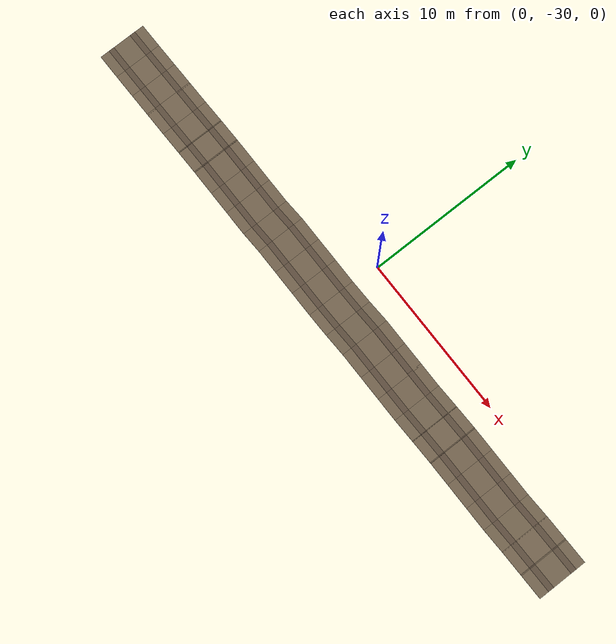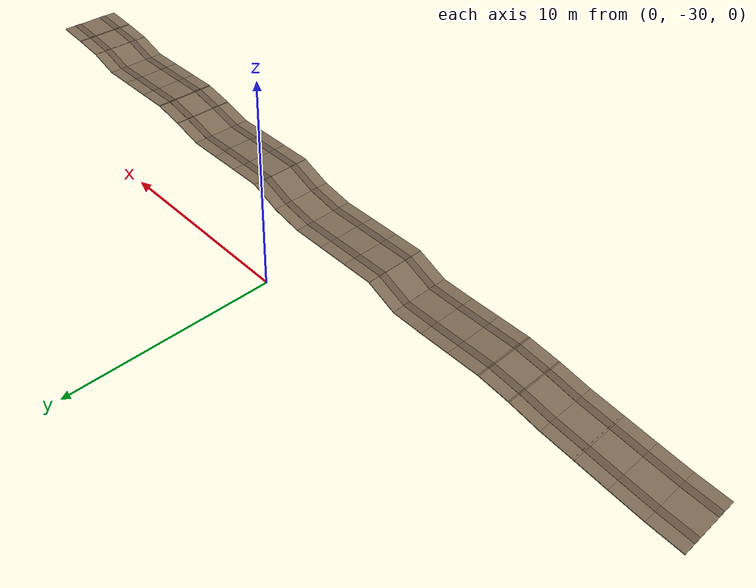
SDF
<sdf version="1.9">
 <world name="orchard_10x41">
  <model name="access_road">
   <static>true</static>
   <link name="link">
    <visual name="road_1">
     <pose>-18.510 -33.300 0.227 0.0000 -0.0709 0.0000</pose>
     <geometry><box><size>1.5696 3.0000 0.0400</size></box></geometry>
     <material>
      <ambient>0.440 0.380 0.300 1</ambient>
      <diffuse>0.484 0.418 0.330 1</diffuse>
      <specular>0.132 0.114 0.090 1</specular>
     </material>
     <plugin filename="gz-sim-label-system" name="gz::sim::systems::Label"><label>65</label></plugin>
    </visual>
    <visual name="rut_2">
     <pose>-18.510 -34.050 0.249 0.0000 -0.0709 0.0000</pose>
     <geometry><box><size>1.5696 0.3500 0.0120</size></box></geometry>
     <material>
      <ambient>0.360 0.300 0.240 1</ambient>
      <diffuse>0.396 0.330 0.264 1</diffuse>
      <specular>0.108 0.090 0.072 1</specular>
     </material>
     <plugin filename="gz-sim-label-system" name="gz::sim::systems::Label"><label>65</label></plugin>
    </visual>
    <visual name="rut_3">
     <pose>-18.510 -32.550 0.249 0.0000 -0.0709 0.0000</pose>
     <geometry><box><size>1.5696 0.3500 0.0120</size></box></geometry>
     <material>
      <ambient>0.360 0.300 0.240 1</ambient>
      <diffuse>0.396 0.330 0.264 1</diffuse>
      <specular>0.108 0.090 0.072 1</specular>
     </material>
     <plugin filename="gz-sim-label-system" name="gz::sim::systems::Label"><label>65</label></plugin>
    </visual>
    <visual name="road_4">
     <pose>-17.029 -33.300 0.366 0.0000 -0.1166 0.0000</pose>
     <geometry><box><size>1.5696 3.0000 0.0400</size></box></geometry>
     <material>
      <ambient>0.440 0.380 0.300 1</ambient>
      <diffuse>0.484 0.418 0.330 1</diffuse>
      <specular>0.132 0.114 0.090 1</specular>
     </material>
     <plugin filename="gz-sim-label-system" name="gz::sim::systems::Label"><label>65</label></plugin>
    </visual>
    <visual name="rut_5">
     <pose>-17.029 -34.050 0.388 0.0000 -0.1166 0.0000</pose>
     <geometry><box><size>1.5696 0.3500 0.0120</size></box></geometry>
     <material>
      <ambient>0.360 0.300 0.240 1</ambient>
      <diffuse>0.396 0.330 0.264 1</diffuse>
      <specular>0.108 0.090 0.072 1</specular>
     </material>
     <plugin filename="gz-sim-label-system" name="gz::sim::systems::Label"><label>65</label></plugin>
    </visual>
    <visual name="rut_6">
     <pose>-17.029 -32.550 0.388 0.0000 -0.1166 0.0000</pose>
     <geometry><box><size>1.5696 0.3500 0.0120</size></box></geometry>
     <material>
      <ambient>0.360 0.300 0.240 1</ambient>
      <diffuse>0.396 0.330 0.264 1</diffuse>
      <specular>0.108 0.090 0.072 1</specular>
     </material>
     <plugin filename="gz-sim-label-system" name="gz::sim::systems::Label"><label>65</label></plugin>
    </visual>
    <visual name="road_7">
     <pose>-15.548 -33.300 0.547 0.0000 -0.1269 0.0000</pose>
     <geometry><box><size>1.5696 3.0000 0.0400</size></box></geometry>
     <material>
      <ambient>0.440 0.380 0.300 1</ambient>
      <diffuse>0.484 0.418 0.330 1</diffuse>
      <specular>0.132 0.114 0.090 1</specular>
     </material>
     <plugin filename="gz-sim-label-system" name="gz::sim::systems::Label"><label>65</label></plugin>
    </visual>
    <visual name="rut_8">
     <pose>-15.548 -34.050 0.569 0.0000 -0.1269 0.0000</pose>
     <geometry><box><size>1.5696 0.3500 0.0120</size></box></geometry>
     <material>
      <ambient>0.360 0.300 0.240 1</ambient>
      <diffuse>0.396 0.330 0.264 1</diffuse>
      <specular>0.108 0.090 0.072 1</specular>
     </material>
     <plugin filename="gz-sim-label-system" name="gz::sim::systems::Label"><label>65</label></plugin>
    </visual>
    <visual name="rut_9">
     <pose>-15.548 -32.550 0.569 0.0000 -0.1269 0.0000</pose>
     <geometry><box><size>1.5696 0.3500 0.0120</size></box></geometry>
     <material>
      <ambient>0.360 0.300 0.240 1</ambient>
      <diffuse>0.396 0.330 0.264 1</diffuse>
      <specular>0.108 0.090 0.072 1</specular>
     </material>
     <plugin filename="gz-sim-label-system" name="gz::sim::systems::Label"><label>65</label></plugin>
    </visual>
    <visual name="road_10">
     <pose>-14.067 -33.300 0.730 0.0000 -0.1186 0.0000</pose>
     <geometry><box><size>1.5696 3.0000 0.0400</size></box></geometry>
     <material>
      <ambient>0.440 0.380 0.300 1</ambient>
      <diffuse>0.484 0.418 0.330 1</diffuse>
      <specular>0.132 0.114 0.090 1</specular>
     </material>
     <plugin filename="gz-sim-label-system" name="gz::sim::systems::Label"><label>65</label></plugin>
    </visual>
    <visual name="rut_11">
     <pose>-14.067 -34.050 0.752 0.0000 -0.1186 0.0000</pose>
     <geometry><box><size>1.5696 0.3500 0.0120</size></box></geometry>
     <material>
      <ambient>0.360 0.300 0.240 1</ambient>
      <diffuse>0.396 0.330 0.264 1</diffuse>
      <specular>0.108 0.090 0.072 1</specular>
     </material>
     <plugin filename="gz-sim-label-system" name="gz::sim::systems::Label"><label>65</label></plugin>
    </visual>
    <visual name="rut_12">
     <pose>-14.067 -32.550 0.752 0.0000 -0.1186 0.0000</pose>
     <geometry><box><size>1.5696 0.3500 0.0120</size></box></geometry>
     <material>
      <ambient>0.360 0.300 0.240 1</ambient>
      <diffuse>0.396 0.330 0.264 1</diffuse>
      <specular>0.108 0.090 0.072 1</specular>
     </material>
     <plugin filename="gz-sim-label-system" name="gz::sim::systems::Label"><label>65</label></plugin>
    </visual>
    <visual name="road_13">
     <pose>-12.587 -33.300 0.959 0.0000 -0.1885 0.0000</pose>
     <geometry><box><size>1.5696 3.0000 0.0400</size></box></geometry>
     <material>
      <ambient>0.440 0.380 0.300 1</ambient>
      <diffuse>0.484 0.418 0.330 1</diffuse>
      <specular>0.132 0.114 0.090 1</specular>
     </material>
     <plugin filename="gz-sim-label-system" name="gz::sim::systems::Label"><label>65</label></plugin>
    </visual>
    <visual name="rut_14">
     <pose>-12.587 -34.050 0.981 0.0000 -0.1885 0.0000</pose>
     <geometry><box><size>1.5696 0.3500 0.0120</size></box></geometry>
     <material>
      <ambient>0.360 0.300 0.240 1</ambient>
      <diffuse>0.396 0.330 0.264 1</diffuse>
      <specular>0.108 0.090 0.072 1</specular>
     </material>
     <plugin filename="gz-sim-label-system" name="gz::sim::systems::Label"><label>65</label></plugin>
    </visual>
    <visual name="rut_15">
     <pose>-12.587 -32.550 0.981 0.0000 -0.1885 0.0000</pose>
     <geometry><box><size>1.5696 0.3500 0.0120</size></box></geometry>
     <material>
      <ambient>0.360 0.300 0.240 1</ambient>
      <diffuse>0.396 0.330 0.264 1</diffuse>
      <specular>0.108 0.090 0.072 1</specular>
     </material>
     <plugin filename="gz-sim-label-system" name="gz::sim::systems::Label"><label>65</label></plugin>
    </visual>
    <visual name="road_16">
     <pose>-11.106 -33.300 1.196 0.0000 -0.1280 0.0000</pose>
     <geometry><box><size>1.5696 3.0000 0.0400</size></box></geometry>
     <material>
      <ambient>0.440 0.380 0.300 1</ambient>
      <diffuse>0.484 0.418 0.330 1</diffuse>
      <specular>0.132 0.114 0.090 1</specular>
     </material>
     <plugin filename="gz-sim-label-system" name="gz::sim::systems::Label"><label>65</label></plugin>
    </visual>
    <visual name="rut_17">
     <pose>-11.106 -34.050 1.218 0.0000 -0.1280 0.0000</pose>
     <geometry><box><size>1.5696 0.3500 0.0120</size></box></geometry>
     <material>
      <ambient>0.360 0.300 0.240 1</ambient>
      <diffuse>0.396 0.330 0.264 1</diffuse>
      <specular>0.108 0.090 0.072 1</specular>
     </material>
     <plugin filename="gz-sim-label-system" name="gz::sim::systems::Label"><label>65</label></plugin>
    </visual>
    <visual name="rut_18">
     <pose>-11.106 -32.550 1.218 0.0000 -0.1280 0.0000</pose>
     <geometry><box><size>1.5696 0.3500 0.0120</size></box></geometry>
     <material>
      <ambient>0.360 0.300 0.240 1</ambient>
      <diffuse>0.396 0.330 0.264 1</diffuse>
      <specular>0.108 0.090 0.072 1</specular>
     </material>
     <plugin filename="gz-sim-label-system" name="gz::sim::systems::Label"><label>65</label></plugin>
    </visual>
    <visual name="road_19">
     <pose>-9.625 -33.300 1.291 0.0000 0.0002 0.0000</pose>
     <geometry><box><size>1.5696 3.0000 0.0400</size></box></geometry>
     <material>
      <ambient>0.440 0.380 0.300 1</ambient>
      <diffuse>0.484 0.418 0.330 1</diffuse>
      <specular>0.132 0.114 0.090 1</specular>
     </material>
     <plugin filename="gz-sim-label-system" name="gz::sim::systems::Label"><label>65</label></plugin>
    </visual>
    <visual name="rut_20">
     <pose>-9.625 -34.050 1.313 0.0000 0.0002 0.0000</pose>
     <geometry><box><size>1.5696 0.3500 0.0120</size></box></geometry>
     <material>
      <ambient>0.360 0.300 0.240 1</ambient>
      <diffuse>0.396 0.330 0.264 1</diffuse>
      <specular>0.108 0.090 0.072 1</specular>
     </material>
     <plugin filename="gz-sim-label-system" name="gz::sim::systems::Label"><label>65</label></plugin>
    </visual>
    <visual name="rut_21">
     <pose>-9.625 -32.550 1.313 0.0000 0.0002 0.0000</pose>
     <geometry><box><size>1.5696 0.3500 0.0120</size></box></geometry>
     <material>
      <ambient>0.360 0.300 0.240 1</ambient>
      <diffuse>0.396 0.330 0.264 1</diffuse>
      <specular>0.108 0.090 0.072 1</specular>
     </material>
     <plugin filename="gz-sim-label-system" name="gz::sim::systems::Label"><label>65</label></plugin>
    </visual>
    <visual name="road_22">
     <pose>-8.144 -33.300 1.290 0.0000 0.0003 0.0000</pose>
     <geometry><box><size>1.5696 3.0000 0.0400</size></box></geometry>
     <material>
      <ambient>0.440 0.380 0.300 1</ambient>
      <diffuse>0.484 0.418 0.330 1</diffuse>
      <specular>0.132 0.114 0.090 1</specular>
     </material>
     <plugin filename="gz-sim-label-system" name="gz::sim::systems::Label"><label>65</label></plugin>
    </visual>
    <visual name="rut_23">
     <pose>-8.144 -34.050 1.312 0.0000 0.0003 0.0000</pose>
     <geometry><box><size>1.5696 0.3500 0.0120</size></box></geometry>
     <material>
      <ambient>0.360 0.300 0.240 1</ambient>
      <diffuse>0.396 0.330 0.264 1</diffuse>
      <specular>0.108 0.090 0.072 1</specular>
     </material>
     <plugin filename="gz-sim-label-system" name="gz::sim::systems::Label"><label>65</label></plugin>
    </visual>
    <visual name="rut_24">
     <pose>-8.144 -32.550 1.312 0.0000 0.0003 0.0000</pose>
     <geometry><box><size>1.5696 0.3500 0.0120</size></box></geometry>
     <material>
      <ambient>0.360 0.300 0.240 1</ambient>
      <diffuse>0.396 0.330 0.264 1</diffuse>
      <specular>0.108 0.090 0.072 1</specular>
     </material>
     <plugin filename="gz-sim-label-system" name="gz::sim::systems::Label"><label>65</label></plugin>
    </visual>
    <visual name="road_25">
     <pose>-6.663 -33.300 1.305 0.0000 -0.0194 0.0000</pose>
     <geometry><box><size>1.5696 3.0000 0.0400</size></box></geometry>
     <material>
      <ambient>0.440 0.380 0.300 1</ambient>
      <diffuse>0.484 0.418 0.330 1</diffuse>
      <specular>0.132 0.114 0.090 1</specular>
     </material>
     <plugin filename="gz-sim-label-system" name="gz::sim::systems::Label"><label>65</label></plugin>
    </visual>
    <visual name="rut_26">
     <pose>-6.663 -34.050 1.327 0.0000 -0.0194 0.0000</pose>
     <geometry><box><size>1.5696 0.3500 0.0120</size></box></geometry>
     <material>
      <ambient>0.360 0.300 0.240 1</ambient>
      <diffuse>0.396 0.330 0.264 1</diffuse>
      <specular>0.108 0.090 0.072 1</specular>
     </material>
     <plugin filename="gz-sim-label-system" name="gz::sim::systems::Label"><label>65</label></plugin>
    </visual>
    <visual name="rut_27">
     <pose>-6.663 -32.550 1.327 0.0000 -0.0194 0.0000</pose>
     <geometry><box><size>1.5696 0.3500 0.0120</size></box></geometry>
     <material>
      <ambient>0.360 0.300 0.240 1</ambient>
      <diffuse>0.396 0.330 0.264 1</diffuse>
      <specular>0.108 0.090 0.072 1</specular>
     </material>
     <plugin filename="gz-sim-label-system" name="gz::sim::systems::Label"><label>65</label></plugin>
    </visual>
    <visual name="road_28">
     <pose>-5.183 -33.300 1.643 0.0000 -0.4126 0.0000</pose>
     <geometry><box><size>1.5696 3.0000 0.0400</size></box></geometry>
     <material>
      <ambient>0.440 0.380 0.300 1</ambient>
      <diffuse>0.484 0.418 0.330 1</diffuse>
      <specular>0.132 0.114 0.090 1</specular>
     </material>
     <plugin filename="gz-sim-label-system" name="gz::sim::systems::Label"><label>65</label></plugin>
    </visual>
    <visual name="rut_29">
     <pose>-5.183 -34.050 1.665 0.0000 -0.4126 0.0000</pose>
     <geometry><box><size>1.5696 0.3500 0.0120</size></box></geometry>
     <material>
      <ambient>0.360 0.300 0.240 1</ambient>
      <diffuse>0.396 0.330 0.264 1</diffuse>
      <specular>0.108 0.090 0.072 1</specular>
     </material>
     <plugin filename="gz-sim-label-system" name="gz::sim::systems::Label"><label>65</label></plugin>
    </visual>
    <visual name="rut_30">
     <pose>-5.183 -32.550 1.665 0.0000 -0.4126 0.0000</pose>
     <geometry><box><size>1.5696 0.3500 0.0120</size></box></geometry>
     <material>
      <ambient>0.360 0.300 0.240 1</ambient>
      <diffuse>0.396 0.330 0.264 1</diffuse>
      <specular>0.108 0.090 0.072 1</specular>
     </material>
     <plugin filename="gz-sim-label-system" name="gz::sim::systems::Label"><label>65</label></plugin>
    </visual>
    <visual name="road_31">
     <pose>-3.702 -33.300 1.967 0.0000 0.0002 0.0000</pose>
     <geometry><box><size>1.5696 3.0000 0.0400</size></box></geometry>
     <material>
      <ambient>0.440 0.380 0.300 1</ambient>
      <diffuse>0.484 0.418 0.330 1</diffuse>
      <specular>0.132 0.114 0.090 1</specular>
     </material>
     <plugin filename="gz-sim-label-system" name="gz::sim::systems::Label"><label>65</label></plugin>
    </visual>
    <visual name="rut_32">
     <pose>-3.702 -34.050 1.989 0.0000 0.0002 0.0000</pose>
     <geometry><box><size>1.5696 0.3500 0.0120</size></box></geometry>
     <material>
      <ambient>0.360 0.300 0.240 1</ambient>
      <diffuse>0.396 0.330 0.264 1</diffuse>
      <specular>0.108 0.090 0.072 1</specular>
     </material>
     <plugin filename="gz-sim-label-system" name="gz::sim::systems::Label"><label>65</label></plugin>
    </visual>
    <visual name="rut_33">
     <pose>-3.702 -32.550 1.989 0.0000 0.0002 0.0000</pose>
     <geometry><box><size>1.5696 0.3500 0.0120</size></box></geometry>
     <material>
      <ambient>0.360 0.300 0.240 1</ambient>
      <diffuse>0.396 0.330 0.264 1</diffuse>
      <specular>0.108 0.090 0.072 1</specular>
     </material>
     <plugin filename="gz-sim-label-system" name="gz::sim::systems::Label"><label>65</label></plugin>
    </visual>
    <visual name="road_34">
     <pose>-2.221 -33.300 1.967 0.0000 0.0002 0.0000</pose>
     <geometry><box><size>1.5696 3.0000 0.0400</size></box></geometry>
     <material>
      <ambient>0.440 0.380 0.300 1</ambient>
      <diffuse>0.484 0.418 0.330 1</diffuse>
      <specular>0.132 0.114 0.090 1</specular>
     </material>
     <plugin filename="gz-sim-label-system" name="gz::sim::systems::Label"><label>65</label></plugin>
    </visual>
    <visual name="rut_35">
     <pose>-2.221 -34.050 1.989 0.0000 0.0002 0.0000</pose>
     <geometry><box><size>1.5696 0.3500 0.0120</size></box></geometry>
     <material>
      <ambient>0.360 0.300 0.240 1</ambient>
      <diffuse>0.396 0.330 0.264 1</diffuse>
      <specular>0.108 0.090 0.072 1</specular>
     </material>
     <plugin filename="gz-sim-label-system" name="gz::sim::systems::Label"><label>65</label></plugin>
    </visual>
    <visual name="rut_36">
     <pose>-2.221 -32.550 1.989 0.0000 0.0002 0.0000</pose>
     <geometry><box><size>1.5696 0.3500 0.0120</size></box></geometry>
     <material>
      <ambient>0.360 0.300 0.240 1</ambient>
      <diffuse>0.396 0.330 0.264 1</diffuse>
      <specular>0.108 0.090 0.072 1</specular>
     </material>
     <plugin filename="gz-sim-label-system" name="gz::sim::systems::Label"><label>65</label></plugin>
    </visual>
    <visual name="road_37">
     <pose>-0.740 -33.300 1.967 0.0000 0.0001 0.0000</pose>
     <geometry><box><size>1.5696 3.0000 0.0400</size></box></geometry>
     <material>
      <ambient>0.440 0.380 0.300 1</ambient>
      <diffuse>0.484 0.418 0.330 1</diffuse>
      <specular>0.132 0.114 0.090 1</specular>
     </material>
     <plugin filename="gz-sim-label-system" name="gz::sim::systems::Label"><label>65</label></plugin>
    </visual>
    <visual name="rut_38">
     <pose>-0.740 -34.050 1.989 0.0000 0.0001 0.0000</pose>
     <geometry><box><size>1.5696 0.3500 0.0120</size></box></geometry>
     <material>
      <ambient>0.360 0.300 0.240 1</ambient>
      <diffuse>0.396 0.330 0.264 1</diffuse>
      <specular>0.108 0.090 0.072 1</specular>
     </material>
     <plugin filename="gz-sim-label-system" name="gz::sim::systems::Label"><label>65</label></plugin>
    </visual>
    <visual name="rut_39">
     <pose>-0.740 -32.550 1.989 0.0000 0.0001 0.0000</pose>
     <geometry><box><size>1.5696 0.3500 0.0120</size></box></geometry>
     <material>
      <ambient>0.360 0.300 0.240 1</ambient>
      <diffuse>0.396 0.330 0.264 1</diffuse>
      <specular>0.108 0.090 0.072 1</specular>
     </material>
     <plugin filename="gz-sim-label-system" name="gz::sim::systems::Label"><label>65</label></plugin>
    </visual>
    <visual name="road_40">
     <pose>0.740 -33.300 2.108 0.0000 -0.1891 0.0000</pose>
     <geometry><box><size>1.5696 3.0000 0.0400</size></box></geometry>
     <material>
      <ambient>0.440 0.380 0.300 1</ambient>
      <diffuse>0.484 0.418 0.330 1</diffuse>
      <specular>0.132 0.114 0.090 1</specular>
     </material>
     <plugin filename="gz-sim-label-system" name="gz::sim::systems::Label"><label>65</label></plugin>
    </visual>
    <visual name="rut_41">
     <pose>0.740 -34.050 2.130 0.0000 -0.1891 0.0000</pose>
     <geometry><box><size>1.5696 0.3500 0.0120</size></box></geometry>
     <material>
      <ambient>0.360 0.300 0.240 1</ambient>
      <diffuse>0.396 0.330 0.264 1</diffuse>
      <specular>0.108 0.090 0.072 1</specular>
     </material>
     <plugin filename="gz-sim-label-system" name="gz::sim::systems::Label"><label>65</label></plugin>
    </visual>
    <visual name="rut_42">
     <pose>0.740 -32.550 2.130 0.0000 -0.1891 0.0000</pose>
     <geometry><box><size>1.5696 0.3500 0.0120</size></box></geometry>
     <material>
      <ambient>0.360 0.300 0.240 1</ambient>
      <diffuse>0.396 0.330 0.264 1</diffuse>
      <specular>0.108 0.090 0.072 1</specular>
     </material>
     <plugin filename="gz-sim-label-system" name="gz::sim::systems::Label"><label>65</label></plugin>
    </visual>
    <visual name="road_43">
     <pose>2.221 -33.300 2.539 0.0000 -0.3725 0.0000</pose>
     <geometry><box><size>1.5696 3.0000 0.0400</size></box></geometry>
     <material>
      <ambient>0.440 0.380 0.300 1</ambient>
      <diffuse>0.484 0.418 0.330 1</diffuse>
      <specular>0.132 0.114 0.090 1</specular>
     </material>
     <plugin filename="gz-sim-label-system" name="gz::sim::systems::Label"><label>65</label></plugin>
    </visual>
    <visual name="rut_44">
     <pose>2.221 -34.050 2.561 0.0000 -0.3725 0.0000</pose>
     <geometry><box><size>1.5696 0.3500 0.0120</size></box></geometry>
     <material>
      <ambient>0.360 0.300 0.240 1</ambient>
      <diffuse>0.396 0.330 0.264 1</diffuse>
      <specular>0.108 0.090 0.072 1</specular>
     </material>
     <plugin filename="gz-sim-label-system" name="gz::sim::systems::Label"><label>65</label></plugin>
    </visual>
    <visual name="rut_45">
     <pose>2.221 -32.550 2.561 0.0000 -0.3725 0.0000</pose>
     <geometry><box><size>1.5696 0.3500 0.0120</size></box></geometry>
     <material>
      <ambient>0.360 0.300 0.240 1</ambient>
      <diffuse>0.396 0.330 0.264 1</diffuse>
      <specular>0.108 0.090 0.072 1</specular>
     </material>
     <plugin filename="gz-sim-label-system" name="gz::sim::systems::Label"><label>65</label></plugin>
    </visual>
    <visual name="road_46">
     <pose>3.702 -33.300 2.829 0.0000 -0.0002 0.0000</pose>
     <geometry><box><size>1.5696 3.0000 0.0400</size></box></geometry>
     <material>
      <ambient>0.440 0.380 0.300 1</ambient>
      <diffuse>0.484 0.418 0.330 1</diffuse>
      <specular>0.132 0.114 0.090 1</specular>
     </material>
     <plugin filename="gz-sim-label-system" name="gz::sim::systems::Label"><label>65</label></plugin>
    </visual>
    <visual name="rut_47">
     <pose>3.702 -34.050 2.851 0.0000 -0.0002 0.0000</pose>
     <geometry><box><size>1.5696 0.3500 0.0120</size></box></geometry>
     <material>
      <ambient>0.360 0.300 0.240 1</ambient>
      <diffuse>0.396 0.330 0.264 1</diffuse>
      <specular>0.108 0.090 0.072 1</specular>
     </material>
     <plugin filename="gz-sim-label-system" name="gz::sim::systems::Label"><label>65</label></plugin>
    </visual>
    <visual name="rut_48">
     <pose>3.702 -32.550 2.851 0.0000 -0.0002 0.0000</pose>
     <geometry><box><size>1.5696 0.3500 0.0120</size></box></geometry>
     <material>
      <ambient>0.360 0.300 0.240 1</ambient>
      <diffuse>0.396 0.330 0.264 1</diffuse>
      <specular>0.108 0.090 0.072 1</specular>
     </material>
     <plugin filename="gz-sim-label-system" name="gz::sim::systems::Label"><label>65</label></plugin>
    </visual>
    <visual name="road_49">
     <pose>5.183 -33.300 2.829 0.0000 -0.0000 0.0000</pose>
     <geometry><box><size>1.5696 3.0000 0.0400</size></box></geometry>
     <material>
      <ambient>0.440 0.380 0.300 1</ambient>
      <diffuse>0.484 0.418 0.330 1</diffuse>
      <specular>0.132 0.114 0.090 1</specular>
     </material>
     <plugin filename="gz-sim-label-system" name="gz::sim::systems::Label"><label>65</label></plugin>
    </visual>
    <visual name="rut_50">
     <pose>5.183 -34.050 2.851 0.0000 -0.0000 0.0000</pose>
     <geometry><box><size>1.5696 0.3500 0.0120</size></box></geometry>
     <material>
      <ambient>0.360 0.300 0.240 1</ambient>
      <diffuse>0.396 0.330 0.264 1</diffuse>
      <specular>0.108 0.090 0.072 1</specular>
     </material>
     <plugin filename="gz-sim-label-system" name="gz::sim::systems::Label"><label>65</label></plugin>
    </visual>
    <visual name="rut_51">
     <pose>5.183 -32.550 2.851 0.0000 -0.0000 0.0000</pose>
     <geometry><box><size>1.5696 0.3500 0.0120</size></box></geometry>
     <material>
      <ambient>0.360 0.300 0.240 1</ambient>
      <diffuse>0.396 0.330 0.264 1</diffuse>
      <specular>0.108 0.090 0.072 1</specular>
     </material>
     <plugin filename="gz-sim-label-system" name="gz::sim::systems::Label"><label>65</label></plugin>
    </visual>
    <visual name="road_52">
     <pose>6.663 -33.300 2.829 0.0000 0.0000 0.0000</pose>
     <geometry><box><size>1.5696 3.0000 0.0400</size></box></geometry>
     <material>
      <ambient>0.440 0.380 0.300 1</ambient>
      <diffuse>0.484 0.418 0.330 1</diffuse>
      <specular>0.132 0.114 0.090 1</specular>
     </material>
     <plugin filename="gz-sim-label-system" name="gz::sim::systems::Label"><label>65</label></plugin>
    </visual>
    <visual name="rut_53">
     <pose>6.663 -34.050 2.851 0.0000 0.0000 0.0000</pose>
     <geometry><box><size>1.5696 0.3500 0.0120</size></box></geometry>
     <material>
      <ambient>0.360 0.300 0.240 1</ambient>
      <diffuse>0.396 0.330 0.264 1</diffuse>
      <specular>0.108 0.090 0.072 1</specular>
     </material>
     <plugin filename="gz-sim-label-system" name="gz::sim::systems::Label"><label>65</label></plugin>
    </visual>
    <visual name="rut_54">
     <pose>6.663 -32.550 2.851 0.0000 0.0000 0.0000</pose>
     <geometry><box><size>1.5696 0.3500 0.0120</size></box></geometry>
     <material>
      <ambient>0.360 0.300 0.240 1</ambient>
      <diffuse>0.396 0.330 0.264 1</diffuse>
      <specular>0.108 0.090 0.072 1</specular>
     </material>
     <plugin filename="gz-sim-label-system" name="gz::sim::systems::Label"><label>65</label></plugin>
    </visual>
    <visual name="road_55">
     <pose>8.144 -33.300 3.024 0.0000 -0.2584 0.0000</pose>
     <geometry><box><size>1.5696 3.0000 0.0400</size></box></geometry>
     <material>
      <ambient>0.440 0.380 0.300 1</ambient>
      <diffuse>0.484 0.418 0.330 1</diffuse>
      <specular>0.132 0.114 0.090 1</specular>
     </material>
     <plugin filename="gz-sim-label-system" name="gz::sim::systems::Label"><label>65</label></plugin>
    </visual>
    <visual name="rut_56">
     <pose>8.144 -34.050 3.046 0.0000 -0.2584 0.0000</pose>
     <geometry><box><size>1.5696 0.3500 0.0120</size></box></geometry>
     <material>
      <ambient>0.360 0.300 0.240 1</ambient>
      <diffuse>0.396 0.330 0.264 1</diffuse>
      <specular>0.108 0.090 0.072 1</specular>
     </material>
     <plugin filename="gz-sim-label-system" name="gz::sim::systems::Label"><label>65</label></plugin>
    </visual>
    <visual name="rut_57">
     <pose>8.144 -32.550 3.046 0.0000 -0.2584 0.0000</pose>
     <geometry><box><size>1.5696 0.3500 0.0120</size></box></geometry>
     <material>
      <ambient>0.360 0.300 0.240 1</ambient>
      <diffuse>0.396 0.330 0.264 1</diffuse>
      <specular>0.108 0.090 0.072 1</specular>
     </material>
     <plugin filename="gz-sim-label-system" name="gz::sim::systems::Label"><label>65</label></plugin>
    </visual>
    <visual name="road_58">
     <pose>9.625 -33.300 3.366 0.0000 -0.1947 0.0000</pose>
     <geometry><box><size>1.5696 3.0000 0.0400</size></box></geometry>
     <material>
      <ambient>0.440 0.380 0.300 1</ambient>
      <diffuse>0.484 0.418 0.330 1</diffuse>
      <specular>0.132 0.114 0.090 1</specular>
     </material>
     <plugin filename="gz-sim-label-system" name="gz::sim::systems::Label"><label>65</label></plugin>
    </visual>
    <visual name="rut_59">
     <pose>9.625 -34.050 3.388 0.0000 -0.1947 0.0000</pose>
     <geometry><box><size>1.5696 0.3500 0.0120</size></box></geometry>
     <material>
      <ambient>0.360 0.300 0.240 1</ambient>
      <diffuse>0.396 0.330 0.264 1</diffuse>
      <specular>0.108 0.090 0.072 1</specular>
     </material>
     <plugin filename="gz-sim-label-system" name="gz::sim::systems::Label"><label>65</label></plugin>
    </visual>
    <visual name="rut_60">
     <pose>9.625 -32.550 3.388 0.0000 -0.1947 0.0000</pose>
     <geometry><box><size>1.5696 0.3500 0.0120</size></box></geometry>
     <material>
      <ambient>0.360 0.300 0.240 1</ambient>
      <diffuse>0.396 0.330 0.264 1</diffuse>
      <specular>0.108 0.090 0.072 1</specular>
     </material>
     <plugin filename="gz-sim-label-system" name="gz::sim::systems::Label"><label>65</label></plugin>
    </visual>
    <visual name="road_61">
     <pose>11.106 -33.300 3.512 0.0000 -0.0004 0.0000</pose>
     <geometry><box><size>1.5696 3.0000 0.0400</size></box></geometry>
     <material>
      <ambient>0.440 0.380 0.300 1</ambient>
      <diffuse>0.484 0.418 0.330 1</diffuse>
      <specular>0.132 0.114 0.090 1</specular>
     </material>
     <plugin filename="gz-sim-label-system" name="gz::sim::systems::Label"><label>65</label></plugin>
    </visual>
    <visual name="rut_62">
     <pose>11.106 -34.050 3.534 0.0000 -0.0004 0.0000</pose>
     <geometry><box><size>1.5696 0.3500 0.0120</size></box></geometry>
     <material>
      <ambient>0.360 0.300 0.240 1</ambient>
      <diffuse>0.396 0.330 0.264 1</diffuse>
      <specular>0.108 0.090 0.072 1</specular>
     </material>
     <plugin filename="gz-sim-label-system" name="gz::sim::systems::Label"><label>65</label></plugin>
    </visual>
    <visual name="rut_63">
     <pose>11.106 -32.550 3.534 0.0000 -0.0004 0.0000</pose>
     <geometry><box><size>1.5696 0.3500 0.0120</size></box></geometry>
     <material>
      <ambient>0.360 0.300 0.240 1</ambient>
      <diffuse>0.396 0.330 0.264 1</diffuse>
      <specular>0.108 0.090 0.072 1</specular>
     </material>
     <plugin filename="gz-sim-label-system" name="gz::sim::systems::Label"><label>65</label></plugin>
    </visual>
    <visual name="road_64">
     <pose>12.587 -33.300 3.513 0.0000 -0.0007 0.0000</pose>
     <geometry><box><size>1.5696 3.0000 0.0400</size></box></geometry>
     <material>
      <ambient>0.440 0.380 0.300 1</ambient>
      <diffuse>0.484 0.418 0.330 1</diffuse>
      <specular>0.132 0.114 0.090 1</specular>
     </material>
     <plugin filename="gz-sim-label-system" name="gz::sim::systems::Label"><label>65</label></plugin>
    </visual>
    <visual name="rut_65">
     <pose>12.587 -34.050 3.535 0.0000 -0.0007 0.0000</pose>
     <geometry><box><size>1.5696 0.3500 0.0120</size></box></geometry>
     <material>
      <ambient>0.360 0.300 0.240 1</ambient>
      <diffuse>0.396 0.330 0.264 1</diffuse>
      <specular>0.108 0.090 0.072 1</specular>
     </material>
     <plugin filename="gz-sim-label-system" name="gz::sim::systems::Label"><label>65</label></plugin>
    </visual>
    <visual name="rut_66">
     <pose>12.587 -32.550 3.535 0.0000 -0.0007 0.0000</pose>
     <geometry><box><size>1.5696 0.3500 0.0120</size></box></geometry>
     <material>
      <ambient>0.360 0.300 0.240 1</ambient>
      <diffuse>0.396 0.330 0.264 1</diffuse>
      <specular>0.108 0.090 0.072 1</specular>
     </material>
     <plugin filename="gz-sim-label-system" name="gz::sim::systems::Label"><label>65</label></plugin>
    </visual>
    <visual name="road_67">
     <pose>14.067 -33.300 3.514 0.0000 -0.0007 0.0000</pose>
     <geometry><box><size>1.5696 3.0000 0.0400</size></box></geometry>
     <material>
      <ambient>0.440 0.380 0.300 1</ambient>
      <diffuse>0.484 0.418 0.330 1</diffuse>
      <specular>0.132 0.114 0.090 1</specular>
     </material>
     <plugin filename="gz-sim-label-system" name="gz::sim::systems::Label"><label>65</label></plugin>
    </visual>
    <visual name="rut_68">
     <pose>14.067 -34.050 3.536 0.0000 -0.0007 0.0000</pose>
     <geometry><box><size>1.5696 0.3500 0.0120</size></box></geometry>
     <material>
      <ambient>0.360 0.300 0.240 1</ambient>
      <diffuse>0.396 0.330 0.264 1</diffuse>
      <specular>0.108 0.090 0.072 1</specular>
     </material>
     <plugin filename="gz-sim-label-system" name="gz::sim::systems::Label"><label>65</label></plugin>
    </visual>
    <visual name="rut_69">
     <pose>14.067 -32.550 3.536 0.0000 -0.0007 0.0000</pose>
     <geometry><box><size>1.5696 0.3500 0.0120</size></box></geometry>
     <material>
      <ambient>0.360 0.300 0.240 1</ambient>
      <diffuse>0.396 0.330 0.264 1</diffuse>
      <specular>0.108 0.090 0.072 1</specular>
     </material>
     <plugin filename="gz-sim-label-system" name="gz::sim::systems::Label"><label>65</label></plugin>
    </visual>
    <visual name="road_70">
     <pose>15.548 -33.300 3.741 0.0000 -0.2970 0.0000</pose>
     <geometry><box><size>1.5696 3.0000 0.0400</size></box></geometry>
     <material>
      <ambient>0.440 0.380 0.300 1</ambient>
      <diffuse>0.484 0.418 0.330 1</diffuse>
      <specular>0.132 0.114 0.090 1</specular>
     </material>
     <plugin filename="gz-sim-label-system" name="gz::sim::systems::Label"><label>65</label></plugin>
    </visual>
    <visual name="rut_71">
     <pose>15.548 -34.050 3.763 0.0000 -0.2970 0.0000</pose>
     <geometry><box><size>1.5696 0.3500 0.0120</size></box></geometry>
     <material>
      <ambient>0.360 0.300 0.240 1</ambient>
      <diffuse>0.396 0.330 0.264 1</diffuse>
      <specular>0.108 0.090 0.072 1</specular>
     </material>
     <plugin filename="gz-sim-label-system" name="gz::sim::systems::Label"><label>65</label></plugin>
    </visual>
    <visual name="rut_72">
     <pose>15.548 -32.550 3.763 0.0000 -0.2970 0.0000</pose>
     <geometry><box><size>1.5696 0.3500 0.0120</size></box></geometry>
     <material>
      <ambient>0.360 0.300 0.240 1</ambient>
      <diffuse>0.396 0.330 0.264 1</diffuse>
      <specular>0.108 0.090 0.072 1</specular>
     </material>
     <plugin filename="gz-sim-label-system" name="gz::sim::systems::Label"><label>65</label></plugin>
    </visual>
    <visual name="road_73">
     <pose>17.029 -33.300 4.056 0.0000 -0.1178 0.0000</pose>
     <geometry><box><size>1.5696 3.0000 0.0400</size></box></geometry>
     <material>
      <ambient>0.440 0.380 0.300 1</ambient>
      <diffuse>0.484 0.418 0.330 1</diffuse>
      <specular>0.132 0.114 0.090 1</specular>
     </material>
     <plugin filename="gz-sim-label-system" name="gz::sim::systems::Label"><label>65</label></plugin>
    </visual>
    <visual name="rut_74">
     <pose>17.029 -34.050 4.078 0.0000 -0.1178 0.0000</pose>
     <geometry><box><size>1.5696 0.3500 0.0120</size></box></geometry>
     <material>
      <ambient>0.360 0.300 0.240 1</ambient>
      <diffuse>0.396 0.330 0.264 1</diffuse>
      <specular>0.108 0.090 0.072 1</specular>
     </material>
     <plugin filename="gz-sim-label-system" name="gz::sim::systems::Label"><label>65</label></plugin>
    </visual>
    <visual name="rut_75">
     <pose>17.029 -32.550 4.078 0.0000 -0.1178 0.0000</pose>
     <geometry><box><size>1.5696 0.3500 0.0120</size></box></geometry>
     <material>
      <ambient>0.360 0.300 0.240 1</ambient>
      <diffuse>0.396 0.330 0.264 1</diffuse>
      <specular>0.108 0.090 0.072 1</specular>
     </material>
     <plugin filename="gz-sim-label-system" name="gz::sim::systems::Label"><label>65</label></plugin>
    </visual>
    <visual name="road_76">
     <pose>18.510 -33.300 4.213 0.0000 -0.0936 0.0000</pose>
     <geometry><box><size>1.5696 3.0000 0.0400</size></box></geometry>
     <material>
      <ambient>0.440 0.380 0.300 1</ambient>
      <diffuse>0.484 0.418 0.330 1</diffuse>
      <specular>0.132 0.114 0.090 1</specular>
     </material>
     <plugin filename="gz-sim-label-system" name="gz::sim::systems::Label"><label>65</label></plugin>
    </visual>
    <visual name="rut_77">
     <pose>18.510 -34.050 4.235 0.0000 -0.0936 0.0000</pose>
     <geometry><box><size>1.5696 0.3500 0.0120</size></box></geometry>
     <material>
      <ambient>0.360 0.300 0.240 1</ambient>
      <diffuse>0.396 0.330 0.264 1</diffuse>
      <specular>0.108 0.090 0.072 1</specular>
     </material>
     <plugin filename="gz-sim-label-system" name="gz::sim::systems::Label"><label>65</label></plugin>
    </visual>
    <visual name="rut_78">
     <pose>18.510 -32.550 4.235 0.0000 -0.0936 0.0000</pose>
     <geometry><box><size>1.5696 0.3500 0.0120</size></box></geometry>
     <material>
      <ambient>0.360 0.300 0.240 1</ambient>
      <diffuse>0.396 0.330 0.264 1</diffuse>
      <specular>0.108 0.090 0.072 1</specular>
     </material>
     <plugin filename="gz-sim-label-system" name="gz::sim::systems::Label"><label>65</label></plugin>
    </visual>
   </link>
  </model>
 </world>
</sdf>
